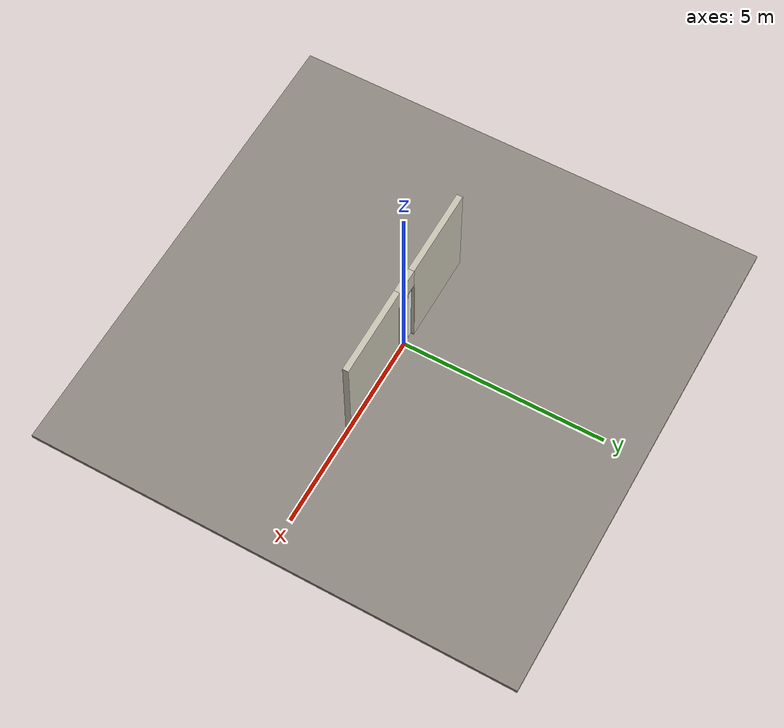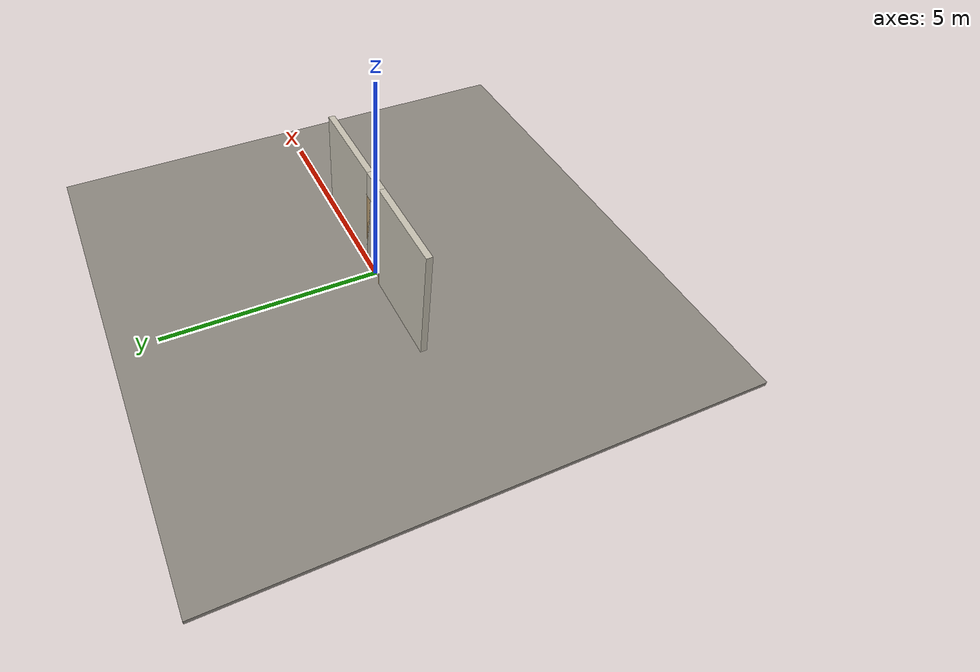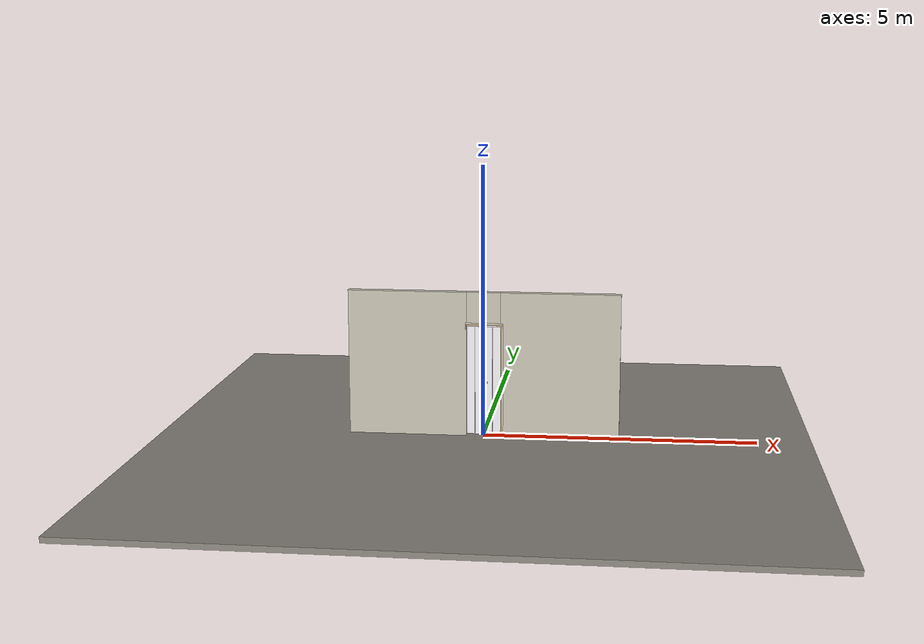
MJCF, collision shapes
<?xml version="1.0" ?>
<mujoco model="db0164_bifold_minimal">
  <compiler angle="radian" meshdir="../../hardware" texturedir="../../textures" autolimits="true" inertiafromgeom="false"/>
  <option timestep="0.002" integrator="implicitfast" cone="elliptic" impratio="10" noslip_iterations="3">
    <flag multiccd="enable"/>
  </option>
  <size memory="16M"/>
  <default>
    <geom condim="4" solref="0.005 1" solimp="0.95 0.99 0.001"/>
    <joint solreflimit="0.005 1" solimplimit="0.95 0.99 0.001"/>
    <tendon solreflimit="0.005 1"/>
    <equality solref="0.002 1"/>
  </default>
  <visual>
    <headlight ambient="0.4 0.4 0.4" diffuse="0.7 0.7 0.7" specular="0.2 0.2 0.2"/>
    <quality shadowsize="4096"/>
    <map znear="0.01" zfar="60"/>
  </visual>
  <asset>
    <mesh name="knob_13f7a2a65f" file="knob_13f7a2a65f.obj"/>
    <material name="mat_floor" rgba="0.55 0.53 0.5 1" specular="0.2" shininess="0.15" reflectance="0"/>
    <material name="mat_wall" rgba="0.78 0.76 0.7 1" specular="0.2" shininess="0.1" reflectance="0"/>
    <material name="mat_frame" rgba="0.82 0.7 0.5 1" specular="0.2" shininess="0.45" reflectance="0"/>
    <material name="mat_track" rgba="0.8 0.81 0.83 1" specular="0.8" shininess="0.6" reflectance="0.4"/>
    <material name="mat_hinge" rgba="0.65 0.66 0.68 1" specular="0.74" shininess="0.5" reflectance="0.36"/>
    <material name="mat_panel_0_0" rgba="0.95 0.95 0.97 1" specular="0.8" shininess="1" reflectance="0.4"/>
    <material name="mat_glass_leaf" rgba="0.95 0.95 0.97 1" specular="0.8" shininess="1" reflectance="0.4"/>
    <material name="mat_patch" rgba="0.75 0.76 0.77 1" specular="0.8" shininess="0.65" reflectance="0.4"/>
    <material name="mat_panel_0_1" rgba="0.95 0.95 0.97 1" specular="0.8" shininess="1" reflectance="0.4"/>
    <material name="mat_op_nickel_satin" rgba="0.72 0.7 0.66 1" specular="0.8" shininess="0.65" reflectance="0.4"/>
    <material name="mat_panel_1_0" rgba="0.95 0.95 0.97 1" specular="0.8" shininess="1" reflectance="0.4"/>
    <material name="mat_panel_1_1" rgba="0.95 0.95 0.97 1" specular="0.8" shininess="1" reflectance="0.4"/>
    <texture name="skybox" type="skybox" builtin="gradient" rgb1="0.6 0.7 0.85" rgb2="0.9 0.92 0.95" width="256" height="256"/>
  </asset>
  <worldbody>
    <light name="sun" pos="1.5 -2.5 4" dir="-0.3 0.5 -0.8" directional="true" diffuse="0.8 0.8 0.8" specular="0.3 0.3 0.3" castshadow="true"/>
    <light name="fill" pos="-1.5 2.5 3" dir="0.3 -0.5 -0.7" directional="true" diffuse="0.35 0.35 0.4" castshadow="false"/>
    <camera name="robot_view" pos="0 -2.581563 1.766338" xyaxes="1 0 0 0 0.26963 0.962964" fovy="52"/>
    <camera name="far_view" pos="0 2.581563 1.766338" xyaxes="-1 0 0 0 -0.26963 0.962964" fovy="52"/>
    <camera name="iso" pos="1.961988 -2.168513 2.179388" xyaxes="0.741536 0.670913 0 -0.242917 0.268487 0.932151" fovy="46"/>
    <camera name="detail_handle" pos="0.125 -0.833 1.28" xyaxes="0.97561 0.219512 0 -0.070934 0.315262 0.94635" fovy="38"/>
    <geom name="floor" type="box" size="6 6 0.05" pos="0 0 -0.05" material="mat_floor" group="0" contype="1" conaffinity="1" friction="0.8 0.005 0.0001" density="2400"/>
    <geom name="wall_left" type="box" size="1.093 0.0725 1.35" pos="-1.407 0 1.35" material="mat_wall" group="0" contype="1" conaffinity="1" friction="0.6 0.005 0.0001" density="800"/>
    <geom name="wall_right" type="box" size="1.093 0.0725 1.35" pos="1.407 0 1.35" material="mat_wall" group="0" contype="1" conaffinity="1" friction="0.6 0.005 0.0001" density="800"/>
    <geom name="wall_header" type="box" size="0.314 0.0725 0.3065" pos="0 0 2.3935" material="mat_wall" group="0" contype="1" conaffinity="1" friction="0.6 0.005 0.0001" density="800"/>
    <geom name="jamb_hinge" type="box" size="0.0095 0.0725 1.0435" pos="-0.3235 0 1.0435" material="mat_frame" group="0" contype="1" conaffinity="1" friction="0.6 0.005 0.0001" density="400"/>
    <geom name="jamb_strike" type="box" size="0.0095 0.0725 1.0435" pos="0.3235 0 1.0435" material="mat_frame" group="0" contype="1" conaffinity="1" friction="0.6 0.005 0.0001" density="400"/>
    <geom name="stud_strike" type="box" size="0.015 0.0725 1.0435" pos="0.348 0 1.0435" material="mat_wall" group="0" contype="1" conaffinity="1" friction="0.6 0.005 0.0001" density="500"/>
    <geom name="jamb_head" type="box" size="0.348 0.0725 0.0095" pos="0.015 0 2.0965" material="mat_frame" group="0" contype="1" conaffinity="1" friction="0.6 0.005 0.0001" density="400"/>
    <geom name="head_stud" type="box" size="0.348 0.0725 0.015" pos="0.015 0 2.121" material="mat_wall" group="0" contype="1" conaffinity="1" friction="0.6 0.005 0.0001" density="500"/>
    <site name="approach_point" pos="0 -1.5 0" quat="1 0 0 0" size="0.05" rgba="0.2 0.9 0.2 0.5" group="4"/>
    <site name="goal_point" pos="0 1.5 0" quat="1 0 0 0" size="0.05" rgba="0.2 0.9 0.2 0.5" group="4"/>
    <site name="door_plane_center" pos="0 0 1.0435" quat="1 0 0 0" size="0.02" rgba="0.2 0.9 0.2 0.5" group="4"/>
    <body name="panel_0_0" pos="-0.314 0 0">
      <inertial pos="0.0775 0 1.036" mass="4.330319" quat="-0.5 0.5 0.5 0.5" diaginertia="0.00760007 1.49001217 1.497586258"/>
      <joint name="panel_0_0_hinge" type="hinge" axis="0 0 -1" pos="0.035 0 0" limited="true" range="0 1.48353" damping="0.694959" frictionloss="0.938108" armature="0.02"/>
      <geom name="panel_0_0_glass" type="box" size="0.0725 0.003 1.016" pos="0.0775 0 1.036" material="mat_glass_leaf" group="0" contype="1" conaffinity="1" friction="0.4 0.005 0.0001" density="1"/>
      <body name="panel_0_1" pos="0.152 0 0">
        <inertial pos="0.106651 -0.021151 1.000456" mass="5.050601" quat="0.060982 0.705485 0.059225 -0.703608" diaginertia="0.001258352 0.022979518 0.023201768"/>
        <joint name="panel_0_1_hinge" type="hinge" axis="0 0 -1" pos="0 0.003 0" limited="true" range="-3.141593 0" damping="0.2" frictionloss="0.1" armature="0.005"/>
        <geom name="panel_0_1_glass" type="box" size="0.0775 0.003 1.016" pos="0.0795 0 1.036" material="mat_glass_leaf" group="0" contype="1" conaffinity="1" friction="0.4 0.005 0.0001" density="1"/>
        <geom name="panel_0_1_knob" type="mesh" mesh="knob_13f7a2a65f" pos="0.107 -0.003 1" quat="0.707107 0.707107 0 0" material="mat_op_nickel_satin" group="1" contype="0" conaffinity="0" density="3000"/>
        <geom name="panel_0_1_knob_col" type="sphere" size="0.016" pos="0.107 -0.033 1" material="mat_op_nickel_satin" group="0" contype="1" conaffinity="1" friction="0.6 0.005 0.0001" density="3000"/>
        <geom name="panel_0_1_knob_rose" type="cylinder" size="0.022 0.005" pos="0.107 -0.008 1" quat="0.707107 -0.707107 0 0" material="mat_op_nickel_satin" group="1" contype="0" conaffinity="0" density="3000"/>
        <site name="panel_0_1_grip" pos="0.107 -0.033 1" quat="1 0 0 0" size="0.012" rgba="0.2 0.9 0.2 0.5" group="4"/>
      </body>
    </body>
    <body name="panel_1_0" pos="0.314 0 0">
      <inertial pos="-0.0775 0 1.036" mass="4.330319" quat="-0.5 0.5 0.5 0.5" diaginertia="0.00760007 1.49001217 1.497586258"/>
      <joint name="panel_1_0_hinge" type="hinge" axis="0 0 1" pos="-0.035 0 0" limited="true" range="0 1.48353" damping="0.694959" frictionloss="0.938108" armature="0.02"/>
      <geom name="panel_1_0_glass" type="box" size="0.0725 0.003 1.016" pos="-0.0775 0 1.036" material="mat_glass_leaf" group="0" contype="1" conaffinity="1" friction="0.4 0.005 0.0001" density="1"/>
      <body name="panel_1_1" pos="-0.152 0 0">
        <inertial pos="-0.106651 -0.021151 1.000456" mass="5.050601" quat="0.060982 0.705485 -0.059225 0.703608" diaginertia="0.001258352 0.022979518 0.023201768"/>
        <joint name="panel_1_1_hinge" type="hinge" axis="0 0 1" pos="0 0.003 0" limited="true" range="-3.141593 0" damping="0.2" frictionloss="0.1" armature="0.005"/>
        <geom name="panel_1_1_glass" type="box" size="0.0775 0.003 1.016" pos="-0.0795 0 1.036" material="mat_glass_leaf" group="0" contype="1" conaffinity="1" friction="0.4 0.005 0.0001" density="1"/>
        <geom name="panel_1_1_knob" type="mesh" mesh="knob_13f7a2a65f" pos="-0.107 -0.003 1" quat="0 0 -0.707107 0.707107" material="mat_op_nickel_satin" group="1" contype="0" conaffinity="0" density="3000"/>
        <geom name="panel_1_1_knob_col" type="sphere" size="0.016" pos="-0.107 -0.033 1" material="mat_op_nickel_satin" group="0" contype="1" conaffinity="1" friction="0.6 0.005 0.0001" density="3000"/>
        <geom name="panel_1_1_knob_rose" type="cylinder" size="0.022 0.005" pos="-0.107 -0.008 1" quat="0.707107 -0.707107 0 0" material="mat_op_nickel_satin" group="1" contype="0" conaffinity="0" density="3000"/>
        <site name="panel_1_1_grip" pos="-0.107 -0.033 1" quat="1 0 0 0" size="0.012" rgba="0.2 0.9 0.2 0.5" group="4"/>
      </body>
    </body>
  </worldbody>
  <equality>
    <joint name="panel_0_1_couple" joint1="panel_0_1_hinge" joint2="panel_0_0_hinge" polycoef="0 -2 0 0 0" active="true"/>
    <joint name="panel_1_1_couple" joint1="panel_1_1_hinge" joint2="panel_1_0_hinge" polycoef="0 -2 0 0 0" active="true"/>
  </equality>
  <sensor>
    <jointpos name="panel_0_0_hinge_pos" joint="panel_0_0_hinge"/>
    <jointvel name="panel_0_0_hinge_vel" joint="panel_0_0_hinge"/>
    <jointpos name="panel_0_1_hinge_pos" joint="panel_0_1_hinge"/>
    <jointvel name="panel_0_1_hinge_vel" joint="panel_0_1_hinge"/>
    <jointpos name="panel_1_0_hinge_pos" joint="panel_1_0_hinge"/>
    <jointvel name="panel_1_0_hinge_vel" joint="panel_1_0_hinge"/>
    <jointpos name="panel_1_1_hinge_pos" joint="panel_1_1_hinge"/>
    <jointvel name="panel_1_1_hinge_vel" joint="panel_1_1_hinge"/>
  </sensor>
</mujoco>
